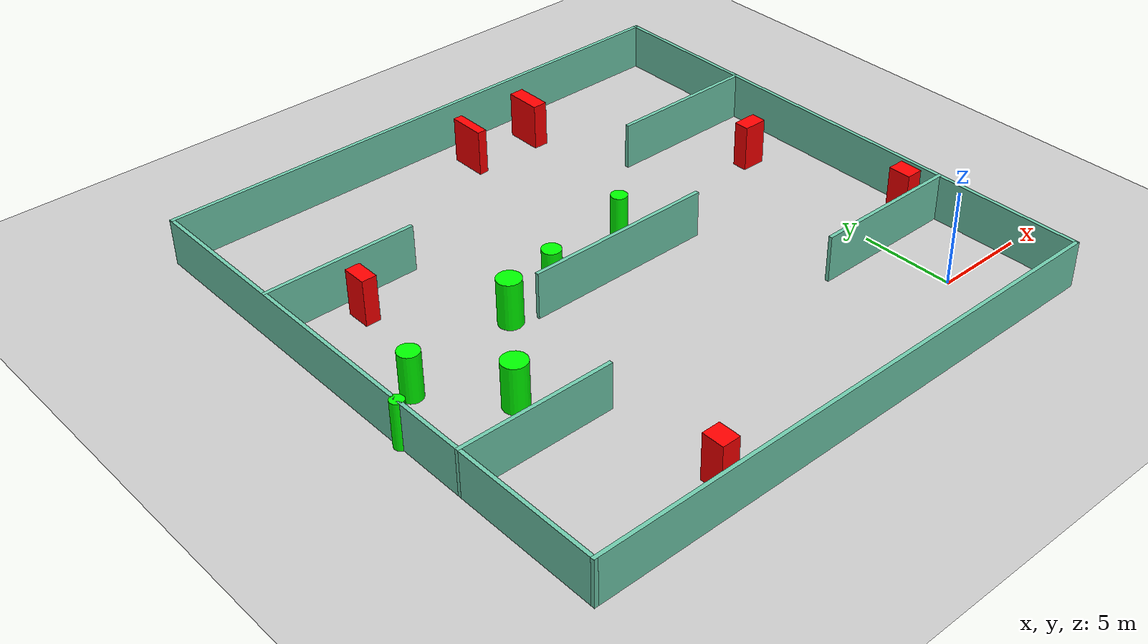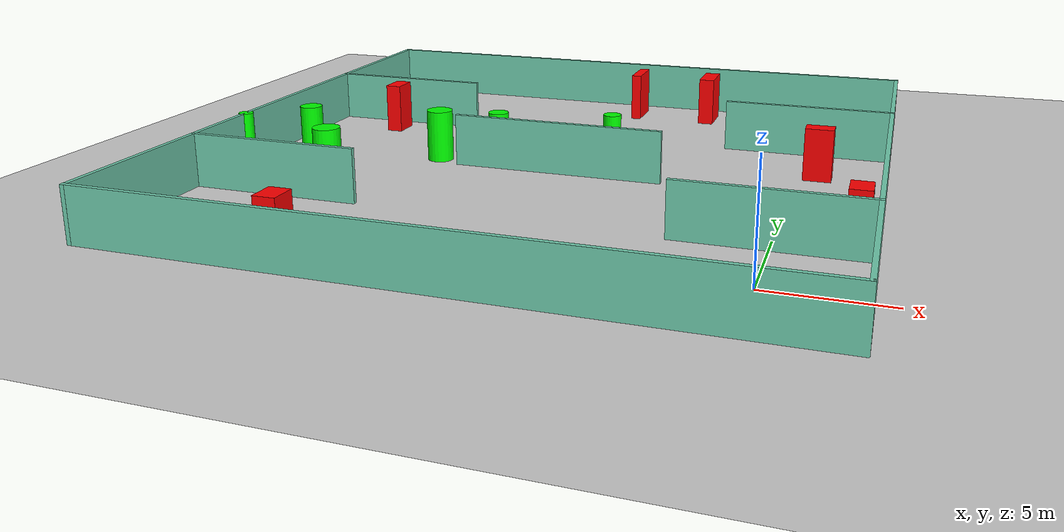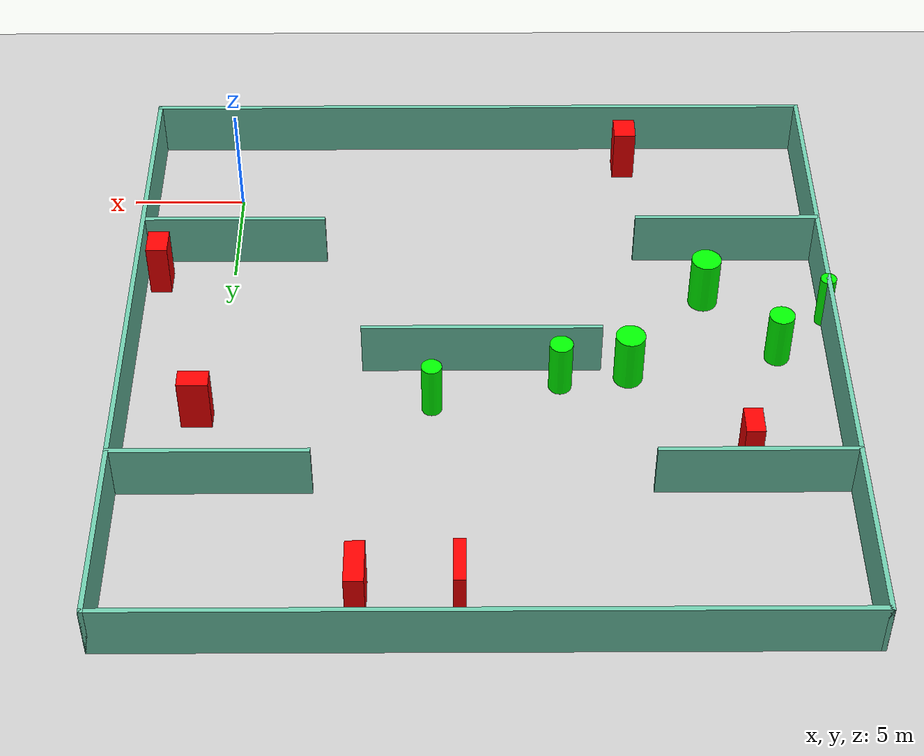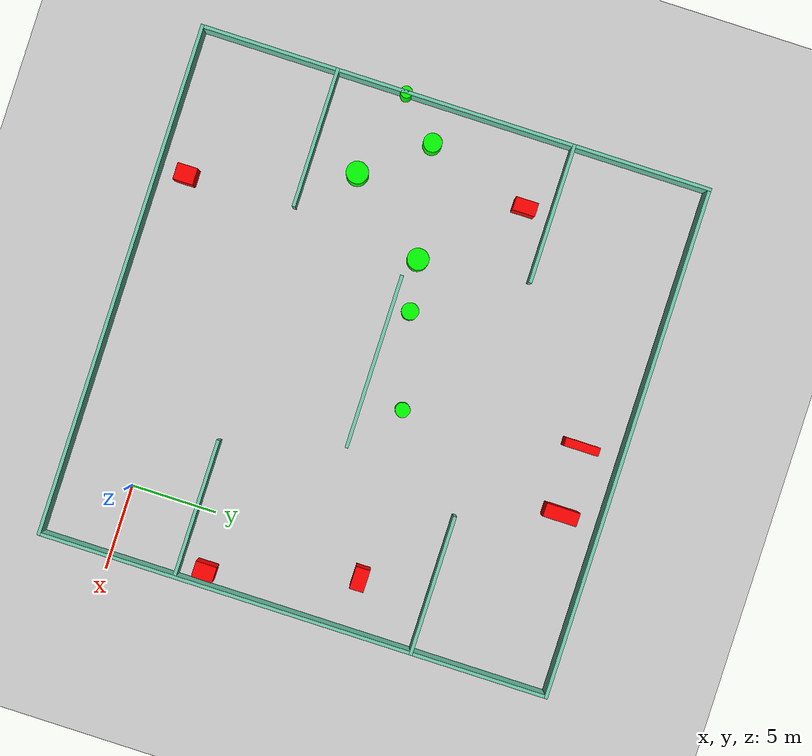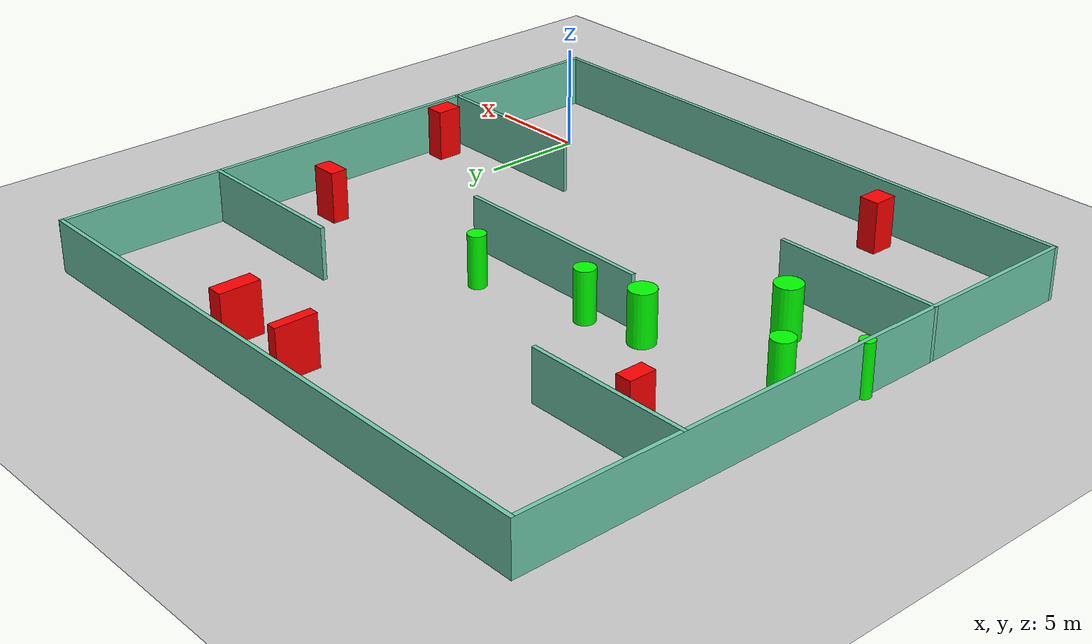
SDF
<sdf version="1.7">
 <world name="default">
  <light name="sun" type="directional">
   <pose>0 0 10 0 -0 0</pose>
   <diffuse>0.8 0.8 0.8 1</diffuse>
   <specular>0.2 0.2 0.2 1</specular>
   <attenuation>
    <range>1000</range>
    <constant>0.9</constant>
    <linear>0.01</linear>
    <quadratic>0.001</quadratic>
   </attenuation>
   <direction>-0.5 0.1 -0.9</direction>
   <spot><inner_angle>0</inner_angle><outer_angle>0</outer_angle><falloff>0</falloff></spot>
  </light>
  <model name="ground_plane">
   <static>1</static>
   <link name="link">
    <collision name="collision">
     <geometry><plane><normal>0 0 1</normal><size>100 100</size></plane></geometry>
     <surface>
      <contact><collide_bitmask>65535</collide_bitmask></contact>
      <friction><ode><mu>100</mu><mu2>50</mu2></ode></friction>
     </surface>
    </collision>
    <visual name="visual">
     <cast_shadows>0</cast_shadows>
     <geometry><plane><normal>0 0 1</normal><size>100 100</size></plane></geometry>
     <material>
      <script><uri>file://media/materials/scripts/gazebo.material</uri><name>Gazebo/Grey</name></script>
     </material>
    </visual>
   </link>
  </model>
  <gravity>0 0 -9.8</gravity>
  <magnetic_field>6e-06 2.3e-05 -4.2e-05</magnetic_field>
  <atmosphere type="adiabatic"/>
  <physics type="ode">
   <max_step_size>0.001</max_step_size>
   <real_time_factor>1</real_time_factor>
   <real_time_update_rate>1000</real_time_update_rate>
  </physics>
  <scene><ambient>0.4 0.4 0.4 1</ambient><background>0.7 0.7 0.7 1</background><shadows>1</shadows></scene>
  <spherical_coordinates>
   <surface_model>EARTH_WGS84</surface_model>
   <latitude_deg>0</latitude_deg>
   <longitude_deg>0</longitude_deg>
   <elevation>0</elevation>
   <heading_deg>0</heading_deg>
  </spherical_coordinates>
  <model name="my_base_walls">
   <link name="Wall_10">
    <collision name="Wall_10_Collision">
     <geometry><box><size>8.2 0.2 2.5</size></box></geometry>
     <pose>0 0 1.25 0 -0 0</pose>
    </collision>
    <visual name="Wall_10_Visual">
     <pose>0 0 1.25 0 -0 0</pose>
     <geometry><box><size>8.2 0.2 2.5</size></box></geometry>
     <material>
      <script><uri>file://media/materials/scripts/gazebo.material</uri><name>Gazebo/Grey</name></script>
      <ambient>0.435294 0.796078 0.67451 1</ambient>
     </material>
     <meta><layer>0</layer></meta>
    </visual>
    <pose>-11 -7 0 0 -0 0</pose>
   </link>
   <link name="Wall_12">
    <collision name="Wall_12_Collision">
     <geometry><box><size>8.2 0.2 2.5</size></box></geometry>
     <pose>0 0 1.25 0 -0 0</pose>
    </collision>
    <visual name="Wall_12_Visual">
     <pose>0 0 1.25 0 -0 0</pose>
     <geometry><box><size>8.2 0.2 2.5</size></box></geometry>
     <material>
      <script><uri>file://media/materials/scripts/gazebo.material</uri><name>Gazebo/Grey</name></script>
      <ambient>0.435294 0.796078 0.67451 1</ambient>
     </material>
     <meta><layer>0</layer></meta>
    </visual>
    <pose>-11 7 0 0 -0 0</pose>
   </link>
   <link name="Wall_14">
    <collision name="Wall_14_Collision">
     <geometry><box><size>8.2 0.2 2.5</size></box></geometry>
     <pose>0 0 1.25 0 -0 0</pose>
    </collision>
    <visual name="Wall_14_Visual">
     <pose>0 0 1.25 0 -0 0</pose>
     <geometry><box><size>8.2 0.2 2.5</size></box></geometry>
     <material>
      <script><uri>file://media/materials/scripts/gazebo.material</uri><name>Gazebo/Grey</name></script>
      <ambient>0.435294 0.796078 0.67451 1</ambient>
     </material>
     <meta><layer>0</layer></meta>
    </visual>
    <pose>11 7 0 0 -0 3.14159</pose>
   </link>
   <link name="Wall_16">
    <collision name="Wall_16_Collision">
     <geometry><box><size>10.2 0.2 2.5</size></box></geometry>
     <pose>0 0 1.25 0 -0 0</pose>
    </collision>
    <visual name="Wall_16_Visual">
     <pose>0 0 1.25 0 -0 0</pose>
     <geometry><box><size>10.2 0.2 2.5</size></box></geometry>
     <material>
      <script><uri>file://media/materials/scripts/gazebo.material</uri><name>Gazebo/Grey</name></script>
      <ambient>0.435294 0.796078 0.67451 1</ambient>
     </material>
     <meta><layer>0</layer></meta>
    </visual>
    <pose>0 0 0 0 -0 3.14159</pose>
   </link>
   <link name="Wall_2">
    <collision name="Wall_2_Collision">
     <geometry><box><size>30.2 0.2 2.5</size></box></geometry>
     <pose>0 0 1.25 0 -0 0</pose>
    </collision>
    <visual name="Wall_2_Visual">
     <pose>0 0 1.25 0 -0 0</pose>
     <geometry><box><size>30.2 0.2 2.5</size></box></geometry>
     <material>
      <script><uri>file://media/materials/scripts/gazebo.material</uri><name>Gazebo/Grey</name></script>
      <ambient>0.435294 0.796078 0.67451 1</ambient>
     </material>
     <meta><layer>0</layer></meta>
    </visual>
    <pose>0 -15 0 0 -0 3.14159</pose>
   </link>
   <link name="Wall_3">
    <collision name="Wall_3_Collision">
     <geometry><box><size>30.2 0.2 2.5</size></box></geometry>
     <pose>0 0 1.25 0 -0 0</pose>
    </collision>
    <visual name="Wall_3_Visual">
     <pose>0 0 1.25 0 -0 0</pose>
     <geometry><box><size>30.2 0.2 2.5</size></box></geometry>
     <material>
      <script><uri>file://media/materials/scripts/gazebo.material</uri><name>Gazebo/Grey</name></script>
      <ambient>0.435294 0.796078 0.67451 1</ambient>
     </material>
     <meta><layer>0</layer></meta>
    </visual>
    <pose>-15 0 0 0 -0 1.5708</pose>
   </link>
   <link name="Wall_4">
    <collision name="Wall_4_Collision">
     <geometry><box><size>30.2 0.2 2.5</size></box></geometry>
     <pose>0 0 1.25 0 -0 0</pose>
    </collision>
    <visual name="Wall_4_Visual">
     <pose>0 0 1.25 0 -0 0</pose>
     <geometry><box><size>30.2 0.2 2.5</size></box></geometry>
     <material>
      <script><uri>file://media/materials/scripts/gazebo.material</uri><name>Gazebo/Grey</name></script>
      <ambient>0.435294 0.796078 0.67451 1</ambient>
     </material>
     <meta><layer>0</layer></meta>
    </visual>
    <pose>0 15 0 0 -0 0</pose>
   </link>
   <link name="Wall_6">
    <collision name="Wall_6_Collision">
     <geometry><box><size>30.2 0.2 2.5</size></box></geometry>
     <pose>0 0 1.25 0 -0 0</pose>
    </collision>
    <visual name="Wall_6_Visual">
     <pose>0 0 1.25 0 -0 0</pose>
     <geometry><box><size>30.2 0.2 2.5</size></box></geometry>
     <material>
      <script><uri>file://media/materials/scripts/gazebo.material</uri><name>Gazebo/Grey</name></script>
      <ambient>0.435294 0.796078 0.67451 1</ambient>
     </material>
     <meta><layer>0</layer></meta>
    </visual>
    <pose>15 0 0 0 -0 1.5708</pose>
   </link>
   <link name="Wall_8">
    <collision name="Wall_8_Collision">
     <geometry><box><size>8.2 0.2 2.5</size></box></geometry>
     <pose>0 0 1.25 0 -0 0</pose>
    </collision>
    <visual name="Wall_8_Visual">
     <pose>0 0 1.25 0 -0 0</pose>
     <geometry><box><size>8.2 0.2 2.5</size></box></geometry>
     <material>
      <script><uri>file://media/materials/scripts/gazebo.material</uri><name>Gazebo/Grey</name></script>
      <ambient>0.435294 0.796078 0.67451 1</ambient>
     </material>
     <meta><layer>0</layer></meta>
    </visual>
    <pose>11 -7 0 0 -0 3.14159</pose>
   </link>
   <static>1</static>
   <pose>-11 11 0 0 -0 0</pose>
  </model>
  <model name="cylinder1">
   <static>1</static>
   <link name="link">
    <inertial>
     <mass>1</mass>
     <inertia><ixx>0.5</ixx><ixy>0</ixy><ixz>0</ixz><iyy>0.5</iyy><iyz>0</iyz><izz>1</izz></inertia>
    </inertial>
    <collision name="collision">
     <geometry><cylinder><radius>0.34744750531313184</radius><length>2.5</length></cylinder></geometry>
    </collision>
    <visual name="visual">
     <geometry><cylinder><radius>0.34744750531313184</radius><length>2.5</length></cylinder></geometry>
     <material>
      <ambient>0 1 0 1</ambient>
      <diffuse>0 1 0 1</diffuse>
      <specular>0.1 0.1 0.1 1</specular>
      <emissive>0 0 0 0</emissive>
     </material>
    </visual>
   </link>
   <pose>-25.99252337245696 8.075809717235925 1.25 0 0 0</pose>
  </model>
  <model name="cylinder2">
   <static>1</static>
   <link name="link">
    <inertial>
     <mass>1</mass>
     <inertia><ixx>0.5</ixx><ixy>0</ixy><ixz>0</ixz><iyy>0.5</iyy><iyz>0</iyz><izz>1</izz></inertia>
    </inertial>
    <collision name="collision">
     <geometry><cylinder><radius>0.6310679951514462</radius><length>2.5</length></cylinder></geometry>
    </collision>
    <visual name="visual">
     <geometry><cylinder><radius>0.6310679951514462</radius><length>2.5</length></cylinder></geometry>
     <material>
      <ambient>0 1 0 1</ambient>
      <diffuse>0 1 0 1</diffuse>
      <specular>0.1 0.1 0.1 1</specular>
      <emissive>0 0 0 0</emissive>
     </material>
    </visual>
   </link>
   <pose>-17.2393055255461 11.578897421360658 1.25 0 0 0</pose>
  </model>
  <model name="cylinder3">
   <static>1</static>
   <link name="link">
    <inertial>
     <mass>1</mass>
     <inertia><ixx>0.5</ixx><ixy>0</ixy><ixz>0</ixz><iyy>0.5</iyy><iyz>0</iyz><izz>1</izz></inertia>
    </inertial>
    <collision name="collision">
     <geometry><cylinder><radius>0.6459353711467043</radius><length>2.5</length></cylinder></geometry>
    </collision>
    <visual name="visual">
     <geometry><cylinder><radius>0.6459353711467043</radius><length>2.5</length></cylinder></geometry>
     <material>
      <ambient>0 1 0 1</ambient>
      <diffuse>0 1 0 1</diffuse>
      <specular>0.1 0.1 0.1 1</specular>
      <emissive>0 0 0 0</emissive>
     </material>
    </visual>
   </link>
   <pose>-20.833648585478812 6.828235524130971 1.25 0 0 0</pose>
  </model>
  <model name="cylinder4">
   <static>1</static>
   <link name="link">
    <inertial>
     <mass>1</mass>
     <inertia><ixx>0.5</ixx><ixy>0</ixy><ixz>0</ixz><iyy>0.5</iyy><iyz>0</iyz><izz>1</izz></inertia>
    </inertial>
    <collision name="collision">
     <geometry><cylinder><radius>0.4308086149903351</radius><length>2.5</length></cylinder></geometry>
    </collision>
    <visual name="visual">
     <geometry><cylinder><radius>0.4308086149903351</radius><length>2.5</length></cylinder></geometry>
     <material>
      <ambient>0 1 0 1</ambient>
      <diffuse>0 1 0 1</diffuse>
      <specular>0.1 0.1 0.1 1</specular>
      <emissive>0 0 0 0</emissive>
     </material>
    </visual>
   </link>
   <pose>-8.888331923139024 13.359510371441523 1.25 0 0 0</pose>
  </model>
  <model name="cylinder5">
   <static>1</static>
   <link name="link">
    <inertial>
     <mass>1</mass>
     <inertia><ixx>0.5</ixx><ixy>0</ixy><ixz>0</ixz><iyy>0.5</iyy><iyz>0</iyz><izz>1</izz></inertia>
    </inertial>
    <collision name="collision">
     <geometry><cylinder><radius>0.5433940308441327</radius><length>2.5</length></cylinder></geometry>
    </collision>
    <visual name="visual">
     <geometry><cylinder><radius>0.5433940308441327</radius><length>2.5</length></cylinder></geometry>
     <material>
      <ambient>0 1 0 1</ambient>
      <diffuse>0 1 0 1</diffuse>
      <specular>0.1 0.1 0.1 1</specular>
      <emissive>0 0 0 0</emissive>
     </material>
    </visual>
   </link>
   <pose>-23.730205644712974 10.35742912876087 1.25 0 0 0</pose>
  </model>
  <model name="cylinder6">
   <static>1</static>
   <link name="link">
    <inertial>
     <mass>1</mass>
     <inertia><ixx>0.5</ixx><ixy>0</ixy><ixz>0</ixz><iyy>0.5</iyy><iyz>0</iyz><izz>1</izz></inertia>
    </inertial>
    <collision name="collision">
     <geometry><cylinder><radius>0.49686714525292697</radius><length>2.5</length></cylinder></geometry>
    </collision>
    <visual name="visual">
     <geometry><cylinder><radius>0.49686714525292697</radius><length>2.5</length></cylinder></geometry>
     <material>
      <ambient>0 1 0 1</ambient>
      <diffuse>0 1 0 1</diffuse>
      <specular>0.1 0.1 0.1 1</specular>
      <emissive>0 0 0 0</emissive>
     </material>
    </visual>
   </link>
   <pose>-14.312014811009734 12.057920170003696 1.25 0 0 0</pose>
  </model>
  <model name="box1">
   <static>1</static>
   <link name="link">
    <inertial>
     <mass>1</mass>
     <inertia><ixx>0.083</ixx><ixy>0</ixy><ixz>0</ixz><iyy>0.083</iyy><iyz>0</iyz><izz>0.083</izz></inertia>
    </inertial>
    <collision name="collision">
     <geometry><box><size>0.9808384173792126 1.1831132140103329 2.5</size></box></geometry>
    </collision>
    <visual name="visual">
     <geometry><box><size>0.9808384173792126 1.1831132140103329 2.5</size></box></geometry>
     <material>
      <ambient>1 0 0 1</ambient>
      <diffuse>1 0 0 1</diffuse>
      <specular>0.1 0.1 0.1 1</specular>
      <emissive>0 0 0 0</emissive>
     </material>
    </visual>
    <sensor name="my_contact" type="contact">
     <contact><collision>box_collision</collision><topic>__default_topic__</topic></contact>
    </sensor>
   </link>
   <pose>-17.79779296152268 -2.3658545913815088 1.25 0 0 0</pose>
  </model>
  <model name="box2">
   <static>1</static>
   <link name="link">
    <inertial>
     <mass>1</mass>
     <inertia><ixx>0.083</ixx><ixy>0</ixy><ixz>0</ixz><iyy>0.083</iyy><iyz>0</iyz><izz>0.083</izz></inertia>
    </inertial>
    <collision name="collision">
     <geometry><box><size>0.7864258063673975 1.3221005715285357 2.5</size></box></geometry>
    </collision>
    <visual name="visual">
     <geometry><box><size>0.7864258063673975 1.3221005715285357 2.5</size></box></geometry>
     <material>
      <ambient>1 0 0 1</ambient>
      <diffuse>1 0 0 1</diffuse>
      <specular>0.1 0.1 0.1 1</specular>
      <emissive>0 0 0 0</emissive>
     </material>
    </visual>
    <sensor name="my_contact" type="contact">
     <contact><collision>box_collision</collision><topic>__default_topic__</topic></contact>
    </sensor>
   </link>
   <pose>-21.911337915166435 16.436763377701958 1.25 0 0 0</pose>
  </model>
  <model name="box3">
   <static>1</static>
   <link name="link">
    <inertial>
     <mass>1</mass>
     <inertia><ixx>0.083</ixx><ixy>0</ixy><ixz>0</ixz><iyy>0.083</iyy><iyz>0</iyz><izz>0.083</izz></inertia>
    </inertial>
    <collision name="collision">
     <geometry><box><size>0.5018732494106452 2.0291017911132965 2.5</size></box></geometry>
    </collision>
    <visual name="visual">
     <geometry><box><size>0.5018732494106452 2.0291017911132965 2.5</size></box></geometry>
     <material>
      <ambient>1 0 0 1</ambient>
      <diffuse>1 0 0 1</diffuse>
      <specular>0.1 0.1 0.1 1</specular>
      <emissive>0 0 0 0</emissive>
     </material>
    </visual>
    <sensor name="my_contact" type="contact">
     <contact><collision>box_collision</collision><topic>__default_topic__</topic></contact>
    </sensor>
   </link>
   <pose>-10.016788420199504 23.611711985957356 1.25 0 0 0</pose>
  </model>
  <model name="box4">
   <static>1</static>
   <link name="link">
    <inertial>
     <mass>1</mass>
     <inertia><ixx>0.083</ixx><ixy>0</ixy><ixz>0</ixz><iyy>0.083</iyy><iyz>0</iyz><izz>0.083</izz></inertia>
    </inertial>
    <collision name="collision">
     <geometry><box><size>0.92711430331063 1.2292221565206347 2.5</size></box></geometry>
    </collision>
    <visual name="visual">
     <geometry><box><size>0.92711430331063 1.2292221565206347 2.5</size></box></geometry>
     <material>
      <ambient>1 0 0 1</ambient>
      <diffuse>1 0 0 1</diffuse>
      <specular>0.1 0.1 0.1 1</specular>
      <emissive>0 0 0 0</emissive>
     </material>
    </visual>
    <sensor name="my_contact" type="contact">
     <contact><collision>box_collision</collision><topic>__default_topic__</topic></contact>
    </sensor>
   </link>
   <pose>3.207205493863068 5.508050287297943 1.25 0 0 0</pose>
  </model>
  <model name="box5">
   <static>1</static>
   <link name="link">
    <inertial>
     <mass>1</mass>
     <inertia><ixx>0.083</ixx><ixy>0</ixy><ixz>0</ixz><iyy>0.083</iyy><iyz>0</iyz><izz>0.083</izz></inertia>
    </inertial>
    <collision name="collision">
     <geometry><box><size>1.310437564300929 0.8247806346460368 2.5</size></box></geometry>
    </collision>
    <visual name="visual">
     <geometry><box><size>1.310437564300929 0.8247806346460368 2.5</size></box></geometry>
     <material>
      <ambient>1 0 0 1</ambient>
      <diffuse>1 0 0 1</diffuse>
      <specular>0.1 0.1 0.1 1</specular>
      <emissive>0 0 0 0</emissive>
     </material>
    </visual>
    <sensor name="my_contact" type="contact">
     <contact><collision>box_collision</collision><topic>__default_topic__</topic></contact>
    </sensor>
   </link>
   <pose>0.9214357769488544 13.983701912237432 1.25 0 0 0</pose>
  </model>
  <model name="box6">
   <static>1</static>
   <link name="link">
    <inertial>
     <mass>1</mass>
     <inertia><ixx>0.083</ixx><ixy>0</ixy><ixz>0</ixz><iyy>0.083</iyy><iyz>0</iyz><izz>0.083</izz></inertia>
    </inertial>
    <collision name="collision">
     <geometry><box><size>0.7919219072680109 1.9737300006204388 2.5</size></box></geometry>
    </collision>
    <visual name="visual">
     <geometry><box><size>0.7919219072680109 1.9737300006204388 2.5</size></box></geometry>
     <material>
      <ambient>1 0 0 1</ambient>
      <diffuse>1 0 0 1</diffuse>
      <specular>0.1 0.1 0.1 1</specular>
      <emissive>0 0 0 0</emissive>
     </material>
    </visual>
    <sensor name="my_contact" type="contact">
     <contact><collision>box_collision</collision><topic>__default_topic__</topic></contact>
    </sensor>
   </link>
   <pose>-6.02170547293432 23.68323986350864 1.25 0 0 0</pose>
  </model>
 </world>
</sdf>
